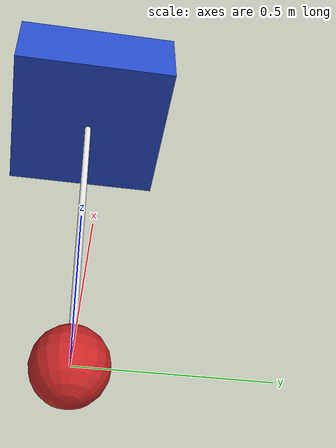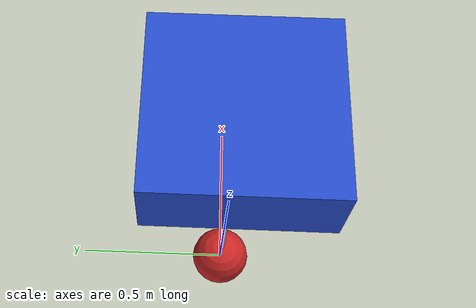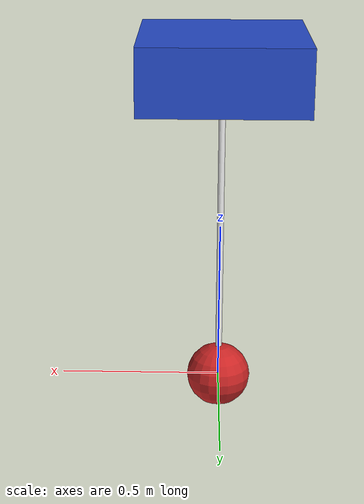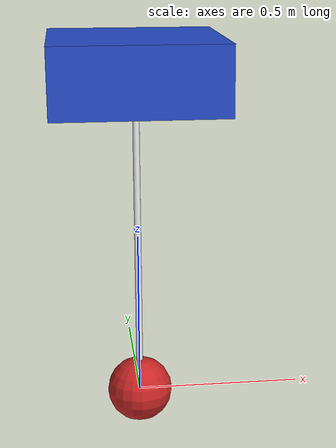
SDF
<?xml version="1.0" ?>
<sdf version="1.7">
  <model name="simple_drone_with_pendulum">
    <!-- Drone Body -->
    <link name="drone">
      <pose>0 0 1 0 0 0</pose> <!-- Drone's position in the world -->
      <inertial>
        <mass>1.0</mass>
        <inertia>
          <ixx>0.02</ixx>
          <iyy>0.02</iyy>
          <izz>0.02</izz>
        </inertia>
      </inertial>
      <visual name="drone_visual">
        <geometry>
          <box>
            <size>0.5 0.5 0.2</size>
          </box>
        </geometry>
        <material>
          <script>
            <name>Gazebo/Blue</name>
            <uri>file://media/materials/scripts/gazebo.material</uri>
          </script>
        </material>
      </visual>
    </link>

    <!-- Pendulum -->
    <link name="pendulum">
      <pose relative_to="drone">0 0 -0.5 0 0 0</pose> <!-- Pendulum relative to drone -->
      <inertial>
        <mass>0.01</mass>
        <inertia>
          <ixx>0.00005</ixx>
          <iyy>0.0008333</iyy>
          <izz>0.0008333</izz>
        </inertia>
      </inertial>
      <visual name="pendulum_visual">
        <geometry>
          <cylinder>
            <radius>0.01</radius>
            <length>1.0</length>
          </cylinder>
        </geometry>
        <material>
          <script>
            <name>Gazebo/White</name>
            <uri>file://media/materials/scripts/gazebo.material</uri>
          </script>
        </material>
      </visual>
    </link>

    <!-- Payload -->
    <link name="payload">
      <pose relative_to="pendulum">0 0 -0.5 0 0 0</pose> <!-- Payload relative to pendulum -->
      <inertial>
        <mass>0.15</mass>
        <inertia>
          <ixx>0.004</ixx>
          <iyy>0.004</iyy>
          <izz>0.004</izz>
        </inertia>
      </inertial>
      <visual name="payload_visual">
        <geometry>
          <sphere>
            <radius>0.1</radius>
          </sphere>
        </geometry>
        <material>
          <script>
            <name>Gazebo/Red</name>
            <uri>file://media/materials/scripts/gazebo.material</uri>
          </script>
        </material>
      </visual>
    </link>

    <!-- Joint: Drone to Pendulum -->
    <joint name="pendulum_joint" type="revolute">
      <parent>drone</parent>
      <child>pendulum</child>
      <pose>0 0 -0.25 0 0 0</pose> <!-- Joint position relative to parent (drone) -->
      <axis>
        <xyz>1 1 1</xyz>
        <limit>
          <lower>-1.5708</lower>
          <upper>1.5708</upper>
        </limit>
      </axis>
    </joint>

    <!-- Joint: Pendulum to Payload -->
    <joint name="payload_joint" type="revolute">
      <parent>pendulum</parent>
      <child>payload</child>
      <pose>0 0 -0.5 0 0 0</pose> <!-- Joint position relative to parent (pendulum) -->
      <axis>
        <xyz>0 0 0</xyz>
        <limit>
          <lower>-1.5708</lower>
          <upper>1.5708</upper>
        </limit>
      </axis>
    </joint>

    <!-- Pendulum Plugin -->
    <plugin name="pendulum_plugin" filename="libpendulum_plugin.so" />
  </model>
</sdf>
